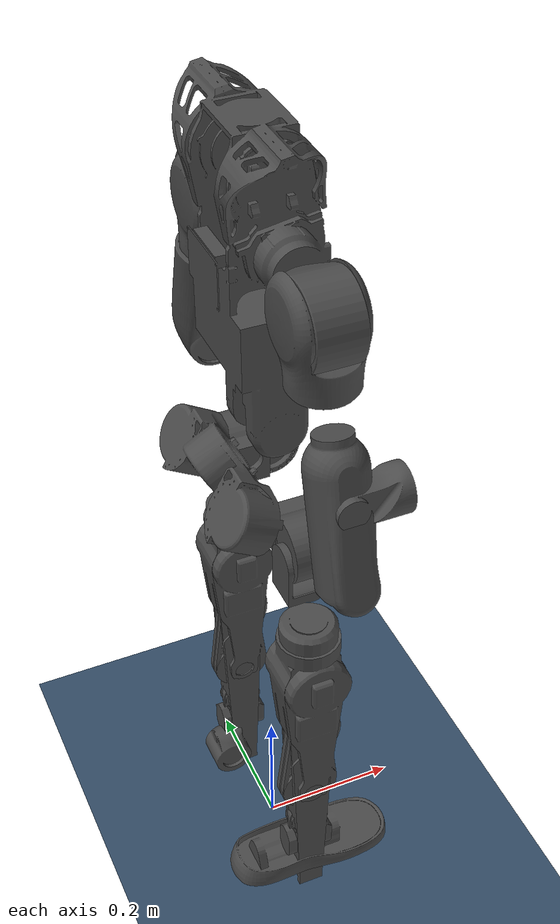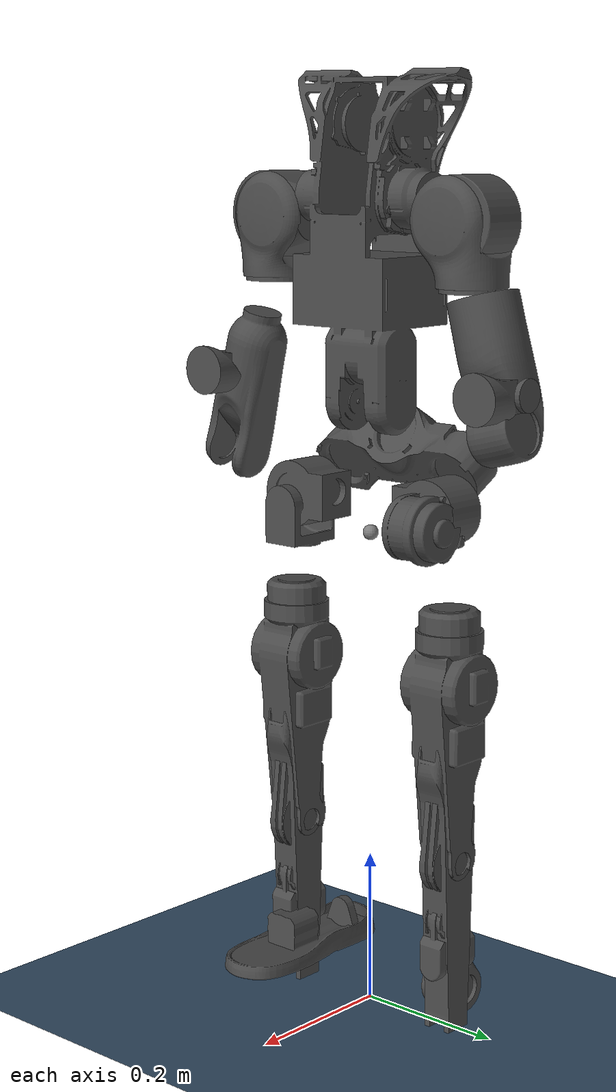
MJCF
<mujoco model="E1_2_v1">
  <compiler angle="radian" meshdir="./meshes/"/>
  <default>
    <joint damping="0.1" armature="0.01" frictionloss="0.01"/>
  </default>
  <asset>
    <mesh name="pelvis" file="pelvis.STL"/>
    <mesh name="left_hip_pitch_link" file="left_hip_pitch_link.STL"/>
    <mesh name="left_hip_roll_link" file="left_hip_roll_link.STL"/>
    <mesh name="left_hip_yaw_link" file="left_hip_yaw_link.STL"/>
    <mesh name="left_knee_link" file="left_knee_link.STL"/>
    <mesh name="left_ankle_pitch_link" file="left_ankle_pitch_link.STL"/>
    <mesh name="left_ankle_roll_link" file="left_ankle_roll_link.STL"/>
    <mesh name="right_hip_pitch_link" file="right_hip_pitch_link.STL"/>
    <mesh name="right_hip_roll_link" file="right_hip_roll_link.STL"/>
    <mesh name="right_hip_yaw_link" file="right_hip_yaw_link.STL"/>
    <mesh name="right_knee_link" file="right_knee_link.STL"/>
    <mesh name="right_ankle_pitch_link" file="right_ankle_pitch_link.STL"/>
    <mesh name="right_ankle_roll_link" file="right_ankle_roll_link.STL"/>
    <mesh name="torso_link" file="torso_link.STL"/>
    <mesh name="left_shoulder_pitch_link" file="left_shoulder_pitch_link.STL"/>
    <mesh name="left_shoulder_roll_link" file="left_shoulder_roll_link.STL"/>
    <mesh name="left_shoulder_yaw_link" file="left_shoulder_yaw_link.STL"/>
    <mesh name="left_elbow_link" file="left_elbow_link.STL"/>
    <mesh name="left_wrist_roll_link" file="left_wrist_roll_link.STL"/>
    <mesh name="left_wrist_pitch_link" file="left_wrist_pitch_link.STL"/>
    <mesh name="right_shoulder_pitch_link" file="right_shoulder_pitch_link.STL"/>
    <mesh name="right_shoulder_roll_link" file="right_shoulder_roll_link.STL"/>
    <mesh name="right_shoulder_yaw_link" file="right_shoulder_yaw_link.STL"/>
    <mesh name="right_elbow_link" file="right_elbow_link.STL"/>
    <mesh name="right_wrist_roll_link" file="right_wrist_roll_link.STL"/>
    <mesh name="right_wrist_pitch_link" file="right_wrist_pitch_link.STL"/>
    <mesh name="head_pitch_link" file="head_pitch_link.STL"/>
    <mesh name="head_yaw_link" file="head_yaw_link.STL"/>
  </asset>

  <worldbody>
    <body name="pelvis" pos="0 0 0.675">
      <inertial pos="-2.026e-05 0 0.0250193" quat="1 -1.77058e-05 -6.2652e-05 0.000906207" mass="3.6" diaginertia="0.0112704 0.00928407 0.00672158"/>
      <joint name="floating_base_joint" type="free" limited="false" actuatorfrclimited="false"/>
      <geom type="mesh" contype="0" conaffinity="0" group="1" density="0" rgba="0.29412 0.29412 0.29412 1" mesh="pelvis"/>
      <geom name="pelvis_collision" type="mesh" rgba="0.29412 0.29412 0.29412 1" mesh="pelvis"/>
      <site name="imu_in_pelvis" size="0.01" pos="0 0 -0.045"/>
      <body name="left_hip_pitch_link" pos="0 0.0575 0">
        <inertial pos="0.00088737 0.0559209 -0.0170011" quat="0.525183 0.830564 -0.161076 0.0916522" mass="1.01" diaginertia="0.00103812 0.00100921 0.000721394"/>
        <joint name="left_hip_pitch_joint" pos="0 0 0" axis="0 1 0" range="-1.5708 1.5708" actuatorfrcrange="-120 120"/>
        <geom type="mesh" contype="0" conaffinity="0" group="1" density="0" rgba="0.29412 0.29412 0.29412 1" mesh="left_hip_pitch_link"/>
        <body name="left_hip_roll_link" pos="0 0.0625 -0.02">
          <inertial pos="-0.00054795 0.00928439 -0.070913" quat="0.72708 0.0123078 0.0971982 0.679526" mass="0.981" diaginertia="0.00140293 0.0012261 0.000954215"/>
          <joint name="left_hip_roll_joint" pos="0 0 0" axis="1 0 0" range="-0.5236 3.1416" actuatorfrcrange="-60 60"/>
          <geom type="mesh" contype="0" conaffinity="0" group="1" density="0" rgba="0.29412 0.29412 0.29412 1" mesh="left_hip_roll_link"/>
          <body name="left_hip_yaw_link" pos="0 0.01 -0.098">
            <inertial pos="-8.81e-06 -0.00845833 -0.163113" quat="0.707299 -0.00656895 0.00682479 0.706851" mass="1.56" diaginertia="0.00493085 0.00429472 0.00135114"/>
            <joint name="left_hip_yaw_joint" pos="0 0 0" axis="0 0 1" range="-2.0944 2.0944" actuatorfrcrange="-36 36"/>
            <geom type="mesh" contype="0" conaffinity="0" group="1" density="0" rgba="0.29412 0.29412 0.29412 1" mesh="left_hip_yaw_link"/>
            <body name="left_knee_link" pos="0 0 -0.182">
              <inertial pos="-0.00054127 0.020434 -0.100513" quat="0.710429 -0.000848428 0.00238427 0.703764" mass="0.389" diaginertia="0.00417321 0.00390613 0.000296172"/>
              <joint name="left_knee_joint" pos="0 0 0" axis="0 1 0" range="0 2.2689" actuatorfrcrange="-120 120"/>
              <geom type="mesh" contype="0" conaffinity="0" group="1" density="0" rgba="0.29412 0.29412 0.29412 1" mesh="left_knee_link"/>
              <body name="left_ankle_pitch_link" pos="0 0 -0.23">
                <inertial pos="0.00011592 -0.00958151 -0.0284272" quat="0.705154 0.0494053 -0.049277 0.705612" mass="1.333" diaginertia="0.00253878 0.00227413 0.000815969"/>
                <joint name="left_ankle_pitch_joint" pos="0 0 0" axis="0 1 0" range="-0.5236 0.5236" actuatorfrcrange="-30 30"/>
                <geom type="mesh" contype="0" conaffinity="0" group="1" density="0" rgba="0.29412 0.29412 0.29412 1" mesh="left_ankle_pitch_link"/>
                <body name="left_ankle_roll_link" pos="-0.03 -0.016 -0.07">
                  <inertial pos="0.0427373 0 -0.0377132" quat="0.515461 0.484045 0.484045 0.515461" mass="0.4" diaginertia="0.00077773 0.000770618 0.000172802"/>
                  <joint name="left_ankle_roll_joint" pos="0 0 0" axis="1 0 0" range="-1.5708 1.5708" actuatorfrcrange="-30 30"/>
                  <geom type="mesh" contype="0" conaffinity="0" group="1" density="0" rgba="0.29412 0.29412 0.29412 1" mesh="left_ankle_roll_link"/>
                  <geom name="l_foot_collision" type="box" size="0.105 0.0457 0.015" pos="0.05 0 -0.055" contype="1" conaffinity="0" rgba="0.8 0.4 0.4 5" group="3"/>
                </body>
              </body>
            </body>
          </body>
        </body>
      </body>
      <body name="right_hip_pitch_link" pos="0 -0.0575 0">
        <inertial pos="0.00088737 -0.0559194 -0.0170037" quat="0.830604 0.524849 -0.0921638 0.16167" mass="1.005" diaginertia="0.00103816 0.00100913 0.000721421"/>
        <joint name="right_hip_pitch_joint" pos="0 0 0" axis="0 1 0" range="-1.5708 1.5708" actuatorfrcrange="-120 120"/>
        <geom type="mesh" contype="0" conaffinity="0" group="1" density="0" rgba="0.29412 0.29412 0.29412 1" mesh="right_hip_pitch_link"/>
        <body name="right_hip_roll_link" pos="0 -0.0625 -0.02">
          <inertial pos="-0.00054795 -0.00928439 -0.070913" quat="0.679526 0.0971982 0.0123078 0.72708" mass="0.981" diaginertia="0.00140293 0.0012261 0.000954215"/>
          <joint name="right_hip_roll_joint" pos="0 0 0" axis="1 0 0" range="-3.1416 0.5236" actuatorfrcrange="-60 60"/>
          <geom type="mesh" contype="0" conaffinity="0" group="1" density="0" rgba="0.29412 0.29412 0.29412 1" mesh="right_hip_roll_link"/>
          <body name="right_hip_yaw_link" pos="0 -0.01 -0.098">
            <inertial pos="8.81e-06 0.00845833 -0.163113" quat="0.707267 0.00689281 -0.00650074 0.706883" mass="1.561" diaginertia="0.00493085 0.00429472 0.00135113"/>
            <joint name="right_hip_yaw_joint" pos="0 0 0" axis="0 0 1" range="-2.0944 2.0944" actuatorfrcrange="-36 36"/>
            <geom type="mesh" contype="0" conaffinity="0" group="1" density="0" rgba="0.29412 0.29412 0.29412 1" mesh="right_hip_yaw_link"/>
            <body name="right_knee_link" pos="0 0 -0.182">
              <inertial pos="-0.00054256 -0.020434 -0.100513" quat="0.703753 0.00255437 -0.000679727 0.71044" mass="0.389" diaginertia="0.00417321 0.00390614 0.000296163"/>
              <joint name="right_knee_joint" pos="0 0 0" axis="0 1 0" range="0 2.2689" actuatorfrcrange="-120 120"/>
              <geom type="mesh" contype="0" conaffinity="0" group="1" density="0" rgba="0.29412 0.29412 0.29412 1" mesh="right_knee_link"/>
              <body name="right_ankle_pitch_link" pos="0 0 -0.23">
                <inertial pos="0.00011592 0.00956002 -0.0284576" quat="0.706733 -0.0493233 0.0493065 0.704035" mass="1.333" diaginertia="0.0025364 0.00227145 0.000815675"/>
                <joint name="right_ankle_pitch_joint" pos="0 0 0" axis="0 1 0" range="-0.5236 0.5236" actuatorfrcrange="-30 30"/>
                <geom type="mesh" contype="0" conaffinity="0" group="1" density="0" rgba="0.29412 0.29412 0.29412 1" mesh="right_ankle_pitch_link"/>
                <body name="right_ankle_roll_link" pos="-0.03 0.016 -0.07">
                  <inertial pos="0.0427373 0 -0.0377132" quat="0.515461 0.484045 0.484045 0.515461" mass="0.4" diaginertia="0.00077773 0.000770618 0.000172802"/>
                  <joint name="right_ankle_roll_joint" pos="0 0 0" axis="1 0 0" range="-1.5708 1.5708" actuatorfrcrange="-30 30"/>
                  <geom type="mesh" contype="0" conaffinity="0" group="1" density="0" rgba="0.29412 0.29412 0.29412 1" mesh="right_ankle_roll_link"/>
                  <geom name="r_foot_collision" type="box" size="0.105 0.0457 0.015" pos="0.05 0 -0.055" contype="1" conaffinity="0" rgba="0.8 0.4 0.4 5" group="3"/>
                </body>
              </body>
            </body>
          </body>
        </body>
      </body>
      <body name="torso_link" pos="0 0 0.12">
        <inertial pos="0.0103058 -8.64128e-05 0.182155" quat="0.999598 4.49745e-05 0.0283396 0.000405751" mass="6.55" diaginertia="0.107486 0.0948048 0.0206584"/>
        <joint name="waist_yaw_joint" pos="0 0 0" axis="0 0 1" range="-2.0944 2.0944" actuatorfrcrange="-60 60"/>
        <geom type="mesh" contype="0" conaffinity="0" group="1" density="0" rgba="0.29412 0.29412 0.29412 1" mesh="torso_link"/>
        <body name="left_shoulder_pitch_link" pos="0 0.109 0.23">
          <inertial pos="0.0002164 0.0326152 7.9e-06" quat="0.705969 0.707947 -0.0128594 -0.015888" mass="0.764" diaginertia="0.000639277 0.000540109 0.000448694"/>
          <joint name="left_shoulder_pitch_joint" pos="0 0 0" axis="0 1 0" range="-2.2253 0.9163" actuatorfrcrange="-60 60"/>
          <geom type="mesh" contype="0" conaffinity="0" group="1" density="0" rgba="0.29412 0.29412 0.29412 1" mesh="left_shoulder_pitch_link"/>
          <geom name="l_shoulder_collision" type="mesh" rgba="0.29412 0.29412 0.29412 1" mesh="left_shoulder_pitch_link"/>
          <body name="left_shoulder_roll_link" pos="0 0.036 0">
            <inertial pos="0.0091122 0.017234 -0.042207" quat="0.964204 0.187993 0.182061 0.0426904" mass="0.5" diaginertia="0.000780092 0.000718395 0.000287923"/>
            <joint name="left_shoulder_roll_joint" pos="0 0 0" axis="1 0 0" range="-0.5236 3.1416" actuatorfrcrange="-36 36"/>
            <geom type="mesh" contype="0" conaffinity="0" group="1" density="0" rgba="0.29412 0.29412 0.29412 1" mesh="left_shoulder_roll_link"/>
            <body name="left_shoulder_yaw_link" pos="0 0.03235 -0.091754" quat="0.991445 0.130526 0 0">
              <inertial pos="-3.07e-06 -0.0105563 -0.100188" quat="0.707013 0.0205321 -0.0204544 0.706606" mass="0.909" diaginertia="0.00125616 0.00114044 0.000561167"/>
              <joint name="left_shoulder_yaw_joint" pos="0 0 0" axis="0 0 1" range="-2.0944 2.0944" actuatorfrcrange="-15 15"/>
              <geom type="mesh" contype="0" conaffinity="0" group="1" density="0" rgba="0.29412 0.29412 0.29412 1" mesh="left_shoulder_yaw_link"/>
              <geom type="mesh" rgba="0.29412 0.29412 0.29412 1" mesh="left_shoulder_yaw_link"/>
              <body name="left_elbow_link" pos="0 0.016368 -0.11645" quat="0.991445 -0.130526 0 0">
                <inertial pos="0.0734429 0.0108741 -2.677e-05" quat="0.520428 0.521868 0.477567 0.478266" mass="0.525" diaginertia="0.000525457 0.00049276 0.000235073"/>
                <joint name="left_elbow_joint" pos="0 0 0" axis="0 1 0" range="-0.698 1.5708" actuatorfrcrange="-60 60"/>
                <geom type="mesh" contype="0" conaffinity="0" group="1" density="0" rgba="0.29412 0.29412 0.29412 1" mesh="left_elbow_link"/>
                <geom type="mesh" rgba="0.29412 0.29412 0.29412 1" mesh="left_elbow_link"/>
              </body>
            </body>
          </body>
        </body>
        <body name="right_shoulder_pitch_link" pos="0 -0.109 0.23">
          <inertial pos="0.0002164 -0.0326133 4.54e-06" quat="0.708239 0.705683 0.0154121 0.013133" mass="0.764" diaginertia="0.000639261 0.00053997 0.000448819"/>
          <joint name="right_shoulder_pitch_joint" pos="0 0 0" axis="0 1 0" range="-2.2253 0.9163" actuatorfrcrange="-60 60"/>
          <geom type="mesh" contype="0" conaffinity="0" group="1" density="0" rgba="0.29412 0.29412 0.29412 1" mesh="right_shoulder_pitch_link"/>
          <geom name="r_shoulder_collision" type="mesh" rgba="0.29412 0.29412 0.29412 1" mesh="right_shoulder_pitch_link"/>
          <body name="right_shoulder_roll_link" pos="0 -0.036 0">
            <inertial pos="0.0091121 -0.017234 -0.042207" quat="0.964204 -0.187995 0.18206 -0.0426971" mass="0.5" diaginertia="0.000780102 0.000718405 0.000287933"/>
            <joint name="right_shoulder_roll_joint" pos="0 0 0" axis="1 0 0" range="-3.1416 0.5236" actuatorfrcrange="-36 36"/>
            <geom type="mesh" contype="0" conaffinity="0" group="1" density="0" rgba="0.29412 0.29412 0.29412 1" mesh="right_shoulder_roll_link"/>
            <body name="right_shoulder_yaw_link" pos="0 -0.03235 -0.091754" quat="0.991445 -0.130526 0 0">
              <inertial pos="0 0.0105679 -0.100231" quat="0.706633 -0.0209942 0.0209465 0.706959" mass="0.91" diaginertia="0.0012565 0.00114115 0.000561537"/>
              <joint name="right_shoulder_yaw_joint" pos="0 0 0" axis="0 0 1" range="-2.0944 2.0944" actuatorfrcrange="-15 15"/>
              <geom type="mesh" contype="0" conaffinity="0" group="1" density="0" rgba="0.29412 0.29412 0.29412 1" mesh="right_shoulder_yaw_link"/>
              <geom type="mesh" rgba="0.29412 0.29412 0.29412 1" mesh="right_shoulder_yaw_link"/>
              <body name="right_elbow_link" pos="0 -0.016368 -0.11645" quat="0.991445 0.130526 0 0">
                <inertial pos="0.00023724 -2.499e-05 2.678e-05" quat="0.477567 0.478266 0.520428 0.521868" mass="0.525" diaginertia="0.000525457 0.00049276 0.000235073"/>
                <joint name="right_elbow_joint" pos="0 0 0" axis="0 1 0" range="-0.698 1.5708" actuatorfrcrange="-60 60"/>
                <geom type="mesh" contype="0" conaffinity="0" group="1" density="0" rgba="0.29412 0.29412 0.29412 1" mesh="right_elbow_link"/>
                <geom type="mesh" rgba="0.29412 0.29412 0.29412 1" mesh="right_elbow_link"/>
              </body>
            </body>
          </body>
        </body>
      </body>
    </body>
  </worldbody>
  <visual>
    <headlight diffuse="0.6 0.6 0.6" ambient="0.1 0.1 0.1" specular="0.9 0.9 0.9"/>
    <rgba haze="0.15 0.25 0.35 1"/>
    <global azimuth="-140" elevation="-20"/>
  </visual>

  <asset>
    <texture type="skybox" builtin="gradient" rgb1="0 0 0" rgb2="0 0 0" width="800" height="800"/>
    <texture type="2d" name="plane" builtin="checker" mark="edge" rgb1="0.3 0.4 0.5" rgb2="0.1 0.2 0.3" markrgb="0.8 0.8 0.8" width="300" height="300"/>
    <material name="plane" texture="plane" texuniform="true" texrepeat="2 2" reflectance="0.0"/>
  </asset>

  <worldbody>
    <light mode="trackcom" pos="1 0 3.5" dir="0 0 -1" directional="true"/>
    <geom name="floor" size="0 0 0.05" type="plane" material="plane" friction="1.0" />
  </worldbody>
  <sensor>
    <gyro name="imu_ang_vel" site="imu_in_pelvis"/>
    <velocimeter name="imu_lin_vel" site="imu_in_pelvis"/>
    <accelerometer name="imu_lin_acc" site="imu_in_pelvis"/>
    <subtreeangmom name="root_angmom" body="pelvis"/>
  </sensor>
</mujoco>
